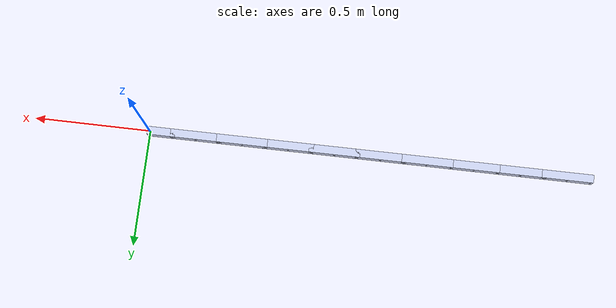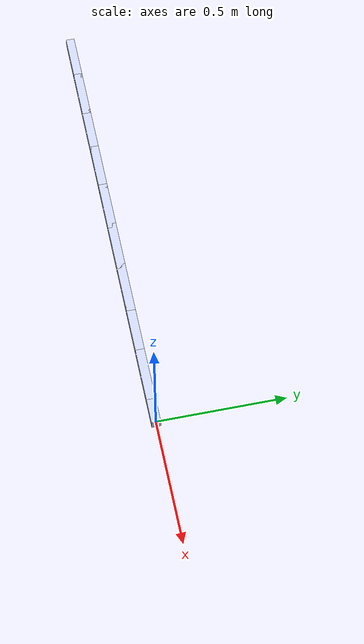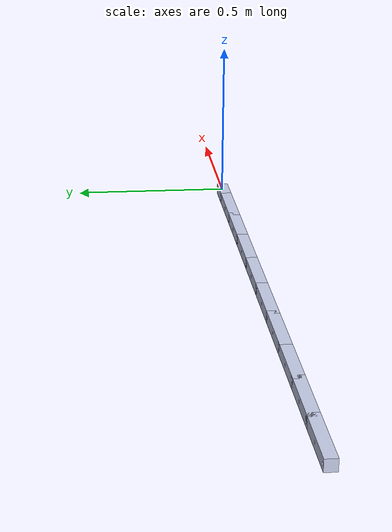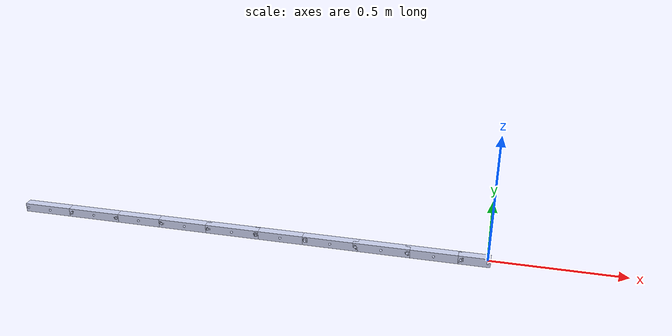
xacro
<?xml version="1.0" encoding="utf-8"?>
<robot
  name="proto_assem">
  <link
    name="link_1">
    <inertial>
      <origin
        xyz="-0.05 0 0"
        rpy="0 0 0" />
      <mass
        value="0.1415" />
      <inertia
        ixx="2.9417E-05"
        ixy="-7.9211E-21"
        ixz="8.2718E-23"
        iyy="0.00017707"
        iyz="1.1479E-39"
        izz="0.00017759" />
    </inertial>
    <visual>
      <origin
        xyz="0 0 0"
        rpy="0 0 0" />
      <geometry>
        <mesh
          filename="package://snake_description/meshes/link_1.stl" />
      </geometry>
      <material
        name="">
        <color
          rgba="0.79216 0.81961 0.93333 1" />
      </material>
    </visual>
    <collision>
      <origin
        xyz="0 0 0"
        rpy="0 0 0" />
      <geometry>
        <mesh
          filename="package://snake_description/meshes/link_1.stl" />
      </geometry>
    </collision>
  </link>
  <link
    name="link_2">
    <inertial>
      <origin
        xyz="-0.05 0 0"
        rpy="0 0 0" />
      <mass
        value="0.1415" />
      <inertia
        ixx="2.9417E-05"
        ixy="-7.9211E-21"
        ixz="8.2718E-23"
        iyy="0.00017707"
        iyz="-8.2007E-40"
        izz="0.00017759" />
    </inertial>
    <visual>
      <origin
        xyz="0 0 0"
        rpy="0 0 0" />
      <geometry>
        <mesh
          filename="package://snake_description/meshes/link_2.stl" />
      </geometry>
      <material
        name="">
        <color
          rgba="0.79216 0.81961 0.93333 1" />
      </material>
    </visual>
    <collision>
      <origin
        xyz="0 0 0"
        rpy="0 0 0" />
      <geometry>
        <mesh
          filename="package://snake_description/meshes/link_2.stl" />
      </geometry>
    </collision>
  </link>
  <joint
    name="joint_12"
    type="revolute">
    <origin
      xyz="-0.1 0 0"
      rpy="0 0 0" />
    <parent
      link="link_1" />
    <child
      link="link_2" />
    <axis
      xyz="0 0 1" />
    <limit
      lower="0"
      upper="0"
      effort="0"
      velocity="0" />
  </joint>
  <link
    name="link_3">
    <inertial>
      <origin
        xyz="-0.05 0 0"
        rpy="0 0 0" />
      <mass
        value="0.141502212856218" />
      <inertia
        ixx="2.94169063927569E-05"
        ixy="-7.95196295534311E-21"
        ixz="8.27180612553033E-23"
        iyy="0.000177066188533302"
        iyz="7.50551633879373E-40"
        izz="0.000177593059801247" />
    </inertial>
    <visual>
      <origin
        xyz="0 0 0"
        rpy="0 0 0" />
      <geometry>
        <mesh
          filename="package://snake_description/meshes/link_3.stl" />
      </geometry>
      <material
        name="">
        <color
          rgba="0.792156862745098 0.819607843137255 0.933333333333333 1" />
      </material>
    </visual>
    <collision>
      <origin
        xyz="0 0 0"
        rpy="0 0 0" />
      <geometry>
        <mesh
          filename="package://snake_description/meshes/link_3.stl" />
      </geometry>
    </collision>
  </link>
  <joint
    name="joint_23"
    type="continuous">
    <origin
      xyz="-0.1 0 0"
      rpy="0 0 0" />
    <parent
      link="link_2" />
    <child
      link="link_3" />
    <axis
      xyz="0 0 1" />
  </joint>
  <link
    name="link_4">
    <inertial>
      <origin
        xyz="-0.05 0 0"
        rpy="0 0 0" />
      <mass
        value="0.141502212856218" />
      <inertia
        ixx="2.94169063927569E-05"
        ixy="-9.73699341212324E-21"
        ixz="4.03553848177537E-21"
        iyy="0.000177066188533302"
        iyz="4.00160040879238E-38"
        izz="0.000177593059801247" />
    </inertial>
    <visual>
      <origin
        xyz="0 0 0"
        rpy="0 0 0" />
      <geometry>
        <mesh
          filename="package://snake_description/meshes/link_4.stl" />
      </geometry>
      <material
        name="">
        <color
          rgba="0.792156862745098 0.819607843137255 0.933333333333333 1" />
      </material>
    </visual>
    <collision>
      <origin
        xyz="0 0 0"
        rpy="0 0 0" />
      <geometry>
        <mesh
          filename="package://snake_description/meshes/link_4.stl" />
      </geometry>
    </collision>
  </link>
  <joint
    name="joint_34"
    type="continuous">
    <origin
      xyz="-0.1 0 0"
      rpy="0 0 0" />
    <parent
      link="link_3" />
    <child
      link="link_4" />
    <axis
      xyz="0 0 1" />
  </joint>
  <link
    name="link_5">
    <inertial>
      <origin
        xyz="-0.05 0 0"
        rpy="0 0 0" />
      <mass
        value="0.141502212856218" />
      <inertia
        ixx="2.94169063927569E-05"
        ixy="-9.61346777398199E-21"
        ixz="4.03553848177537E-21"
        iyy="0.000177066188533302"
        iyz="4.00160040879238E-38"
        izz="0.000177593059801247" />
    </inertial>
    <visual>
      <origin
        xyz="0 0 0"
        rpy="0 0 0" />
      <geometry>
        <mesh
          filename="package://snake_description/meshes/link_5.stl" />
      </geometry>
      <material
        name="">
        <color
          rgba="0.792156862745098 0.819607843137255 0.933333333333333 1" />
      </material>
    </visual>
    <collision>
      <origin
        xyz="0 0 0"
        rpy="0 0 0" />
      <geometry>
        <mesh
          filename="package://snake_description/meshes/link_5.stl" />
      </geometry>
    </collision>
  </link>
  <joint
    name="joint_45"
    type="continuous">
    <origin
      xyz="-0.1 0 0"
      rpy="0 0 0" />
    <parent
      link="link_4" />
    <child
      link="link_5" />
    <axis
      xyz="0 0 1" />
  </joint>
  <link
    name="link_6">
    <inertial>
      <origin
        xyz="-0.0499999999999999 0 0"
        rpy="0 0 0" />
      <mass
        value="0.141502212856218" />
      <inertia
        ixx="2.94169063927569E-05"
        ixy="-1.03546216028295E-20"
        ixz="3.87010235926477E-21"
        iyy="0.000177066188533302"
        iyz="4.00160040879238E-38"
        izz="0.000177593059801247" />
    </inertial>
    <visual>
      <origin
        xyz="0 0 0"
        rpy="0 0 0" />
      <geometry>
        <mesh
          filename="package://snake_description/meshes/link_6.stl" />
      </geometry>
      <material
        name="">
        <color
          rgba="0.792156862745098 0.819607843137255 0.933333333333333 1" />
      </material>
    </visual>
    <collision>
      <origin
        xyz="0 0 0"
        rpy="0 0 0" />
      <geometry>
        <mesh
          filename="package://snake_description/meshes/link_6.stl" />
      </geometry>
    </collision>
  </link>
  <joint
    name="joint_56"
    type="continuous">
    <origin
      xyz="-0.1 0 0"
      rpy="0 0 0" />
    <parent
      link="link_5" />
    <child
      link="link_6" />
    <axis
      xyz="0 0 1" />
  </joint>
  <link
    name="link_7">
    <inertial>
      <origin
        xyz="-0.05 0 0"
        rpy="0 0 0" />
      <mass
        value="0.141502212856218" />
      <inertia
        ixx="2.94169063927569E-05"
        ixy="-1.03546216028295E-20"
        ixz="7.98835890229543E-21"
        iyy="0.000177066188533302"
        iyz="3.34609386577561E-36"
        izz="0.000177593059801247" />
    </inertial>
    <visual>
      <origin
        xyz="0 0 0"
        rpy="0 0 0" />
      <geometry>
        <mesh
          filename="package://snake_description/meshes/link_7.stl" />
      </geometry>
      <material
        name="">
        <color
          rgba="0.792156862745098 0.819607843137255 0.933333333333333 1" />
      </material>
    </visual>
    <collision>
      <origin
        xyz="0 0 0"
        rpy="0 0 0" />
      <geometry>
        <mesh
          filename="package://snake_description/meshes/link_7.stl" />
      </geometry>
    </collision>
  </link>
  <joint
    name="joint_67"
    type="continuous">
    <origin
      xyz="-0.1 0 0"
      rpy="0 0 0" />
    <parent
      link="link_6" />
    <child
      link="link_7" />
    <axis
      xyz="0 0 1" />
  </joint>
  <link
    name="link_8">
    <inertial>
      <origin
        xyz="-0.05 0 0"
        rpy="0 0 0" />
      <mass
        value="0.141502212856218" />
      <inertia
        ixx="2.94169063927569E-05"
        ixy="-1.03546216028295E-20"
        ixz="7.98835890229543E-21"
        iyy="0.000177066188533302"
        iyz="3.34609386577561E-36"
        izz="0.000177593059801247" />
    </inertial>
    <visual>
      <origin
        xyz="0 0 0"
        rpy="0 0 0" />
      <geometry>
        <mesh
          filename="package://snake_description/meshes/link_8.stl" />
      </geometry>
      <material
        name="">
        <color
          rgba="0.792156862745098 0.819607843137255 0.933333333333333 1" />
      </material>
    </visual>
    <collision>
      <origin
        xyz="0 0 0"
        rpy="0 0 0" />
      <geometry>
        <mesh
          filename="package://snake_description/meshes/link_8.stl" />
      </geometry>
    </collision>
  </link>
  <joint
    name="joint_78"
    type="continuous">
    <origin
      xyz="-0.1 0 0"
      rpy="0 0 0" />
    <parent
      link="link_7" />
    <child
      link="link_8" />
    <axis
      xyz="0 0 1" />
  </joint>
  <link
    name="link_9">
    <inertial>
      <origin
        xyz="-0.0499999999999999 0 0"
        rpy="0 0 0" />
      <mass
        value="0.141502212856218" />
      <inertia
        ixx="2.94169063927569E-05"
        ixy="-1.03546216028295E-20"
        ixz="3.95282042052007E-21"
        iyy="0.000177066188533302"
        iyz="-3.26606185759976E-36"
        izz="0.000177593059801247" />
    </inertial>
    <visual>
      <origin
        xyz="0 0 0"
        rpy="0 0 0" />
      <geometry>
        <mesh
          filename="package://snake_description/meshes/link_9.stl" />
      </geometry>
      <material
        name="">
        <color
          rgba="0.792156862745098 0.819607843137255 0.933333333333333 1" />
      </material>
    </visual>
    <collision>
      <origin
        xyz="0 0 0"
        rpy="0 0 0" />
      <geometry>
        <mesh
          filename="package://snake_description/meshes/link_9.stl" />
      </geometry>
    </collision>
  </link>
  <joint
    name="joint_89"
    type="continuous">
    <origin
      xyz="-0.1 0 0"
      rpy="0 0 0" />
    <parent
      link="link_8" />
    <child
      link="link_9" />
    <axis
      xyz="0 0 1" />
  </joint>
  <link
    name="link_10">
    <inertial>
      <origin
        xyz="-0.05 0 0"
        rpy="0 0 0" />
      <mass
        value="0.141502212856218" />
      <inertia
        ixx="2.94169063927569E-05"
        ixy="-1.03546216028295E-20"
        ixz="7.98835890229543E-21"
        iyy="0.000177066188533302"
        iyz="3.34609386577561E-36"
        izz="0.000177593059801247" />
    </inertial>
    <visual>
      <origin
        xyz="0 0 0"
        rpy="0 0 0" />
      <geometry>
        <mesh
          filename="package://snake_description/meshes/link_10.stl" />
      </geometry>
      <material
        name="">
        <color
          rgba="0.792156862745098 0.819607843137255 0.933333333333333 1" />
      </material>
    </visual>
    <collision>
      <origin
        xyz="0 0 0"
        rpy="0 0 0" />
      <geometry>
        <mesh
          filename="package://snake_description/meshes/link_10.stl" />
      </geometry>
    </collision>
  </link>
  <joint
    name="joint_910"
    type="continuous">
    <origin
      xyz="-0.1 0 0"
      rpy="0 0 0" />
    <parent
      link="link_9" />
    <child
      link="link_10" />
    <axis
      xyz="0 0 1" />
  </joint>
</robot>
